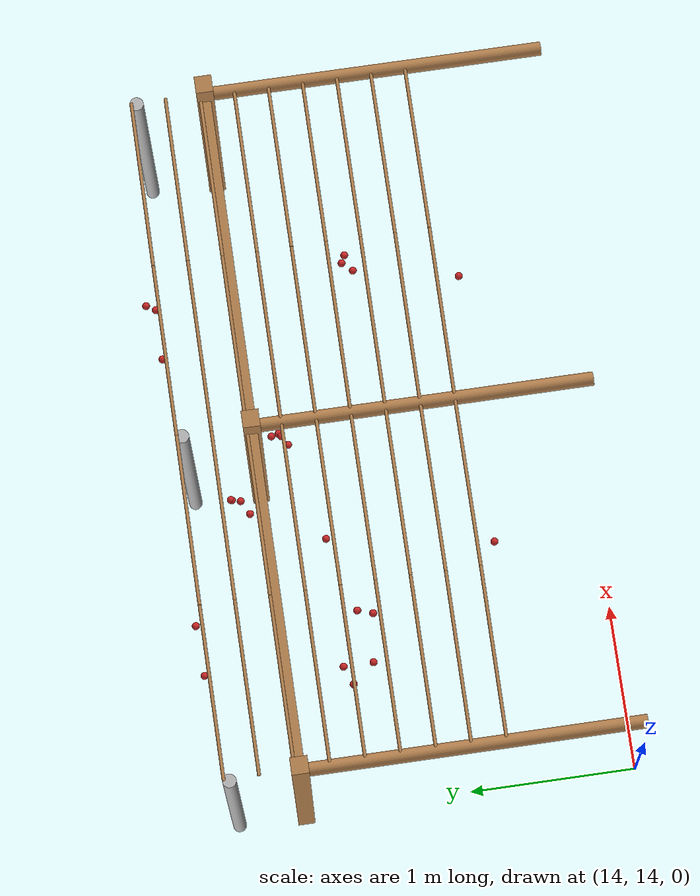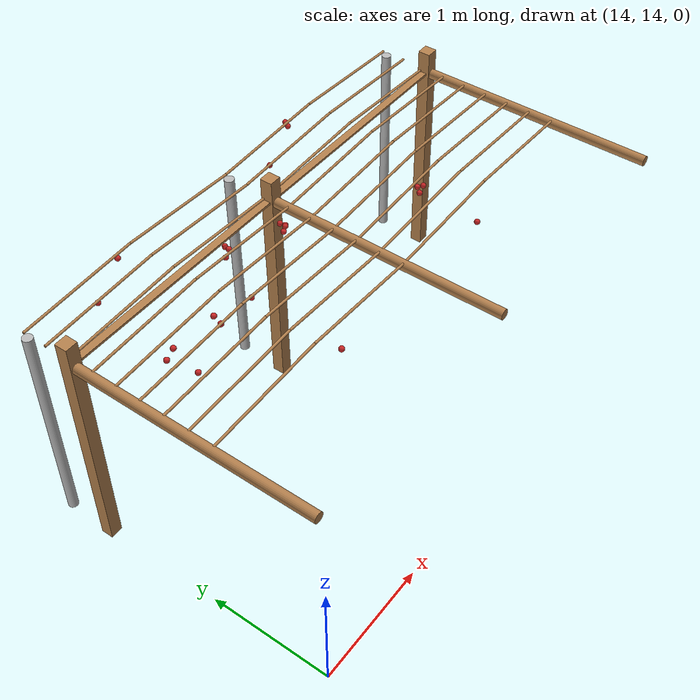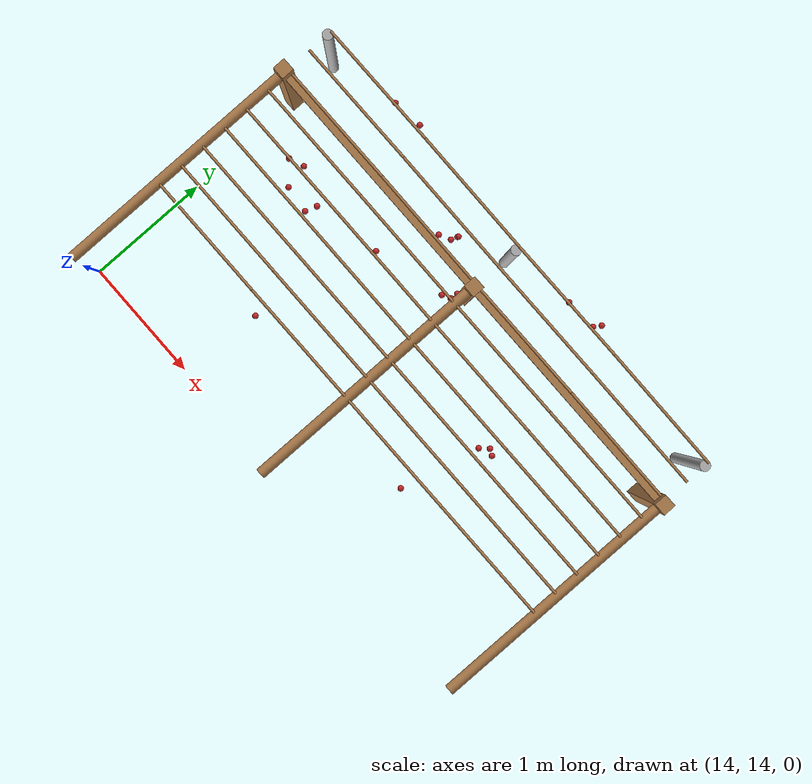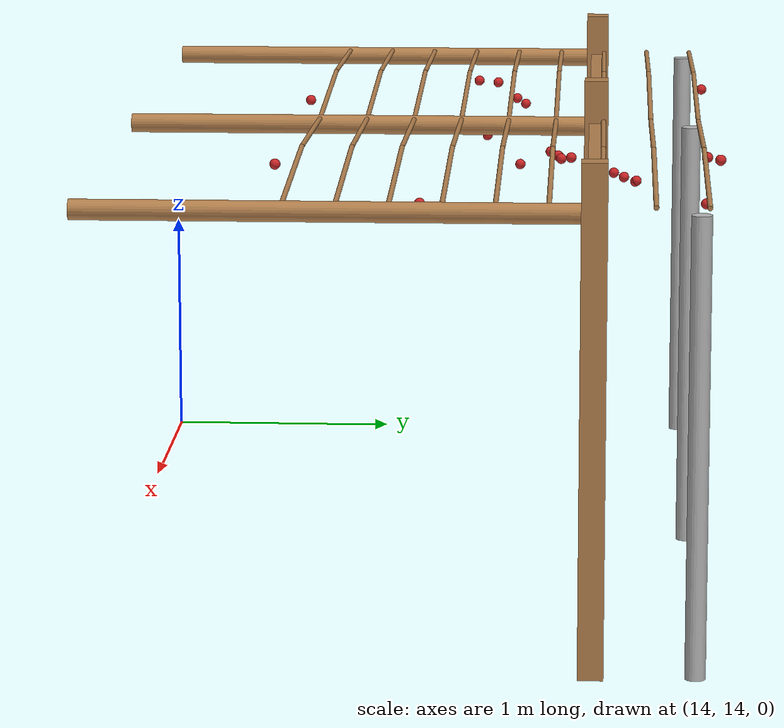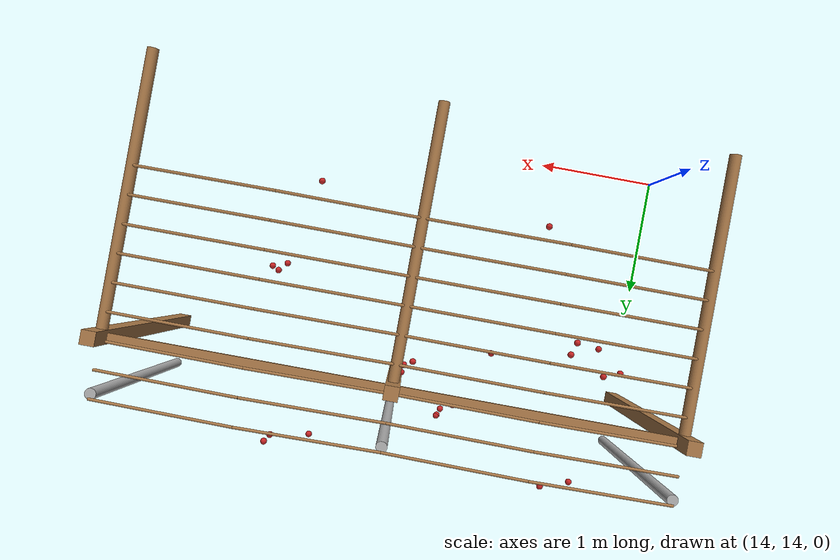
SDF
<sdf version="1.4">
 <model name="pergola">
  <include><name>post_85</name><pose>14.0 16.0 0 0 0 0</pose><uri>model://post</uri></include>
  <include><name>post_96</name><pose>16.0 16.0 0 0 0 0</pose><uri>model://post</uri></include>
  <include><name>post_107</name><pose>18.0 16.0 0 0 0 0</pose><uri>model://post</uri></include>
  <link name="beam_85">
   <pose>15.0 16.0 1.81 0 0 0</pose>
   <collision name="collision"><geometry><box><size>2.0 0.06 0.02</size></box></geometry></collision>
   <visual name="visual">
    <geometry><box><size>2.0 0.06 0.02</size></box></geometry>
    <material><script><name>Gazebo/Wood</name></script></material>
   </visual>
   <inertial>
    <mass>5</mass>
    <inertia>
     <ixx>0.0016666666666666668</ixx>
     <ixy>0.0</ixy>
     <ixz>0.0</ixz>
     <iyy>1.6681666666666664</iyy>
     <iyz>0.0</iyz>
     <izz>1.6668333333333332</izz>
    </inertia>
   </inertial>
  </link>
  <link name="beam_96">
   <pose>17.0 16.0 1.81 0 0 0</pose>
   <collision name="collision"><geometry><box><size>2.0 0.06 0.02</size></box></geometry></collision>
   <visual name="visual">
    <geometry><box><size>2.0 0.06 0.02</size></box></geometry>
    <material><script><name>Gazebo/Wood</name></script></material>
   </visual>
   <inertial>
    <mass>5</mass>
    <inertia>
     <ixx>0.0016666666666666668</ixx>
     <ixy>0.0</ixy>
     <ixz>0.0</ixz>
     <iyy>1.6681666666666664</iyy>
     <iyz>0.0</iyz>
     <izz>1.6668333333333332</izz>
    </inertia>
   </inertial>
  </link>
  <include><name>tree_78</name><pose>14.0 16.4 0 0 0 0</pose><uri>model://tree_trunk</uri></include>
  <include><name>tree_88</name><pose>16.0 16.4 0 0 0 0</pose><uri>model://tree_trunk</uri></include>
  <include><name>tree_98</name><pose>18.0 16.4 0 0 0 0</pose><uri>model://tree_trunk</uri></include>
  <link name="baseBranch_77">
   <pose>14.0 15.0 1.8 1.5707963267948966 0 0</pose>
   <collision name="collision">
    <geometry><cylinder><radius>0.04</radius><length>1.94</length></cylinder></geometry>
   </collision>
   <visual name="visual">
    <geometry><cylinder><radius>0.04</radius><length>1.94</length></cylinder></geometry>
    <material><script><name>Gazebo/WoodFloor</name></script></material>
   </visual>
   <inertial>
    <mass>10</mass>
    <inertia>
     <ixx>3.140333333333333</ixx>
     <ixy>0.0</ixy>
     <ixz>0.0</ixz>
     <iyy>3.140333333333333</iyy>
     <iyz>0.0</iyz>
     <izz>0.008</izz>
    </inertia>
   </inertial>
  </link>
  <link name="baseBranch_87">
   <pose>16.0 15.0 1.8 1.5707963267948966 0 0</pose>
   <collision name="collision">
    <geometry><cylinder><radius>0.04</radius><length>1.94</length></cylinder></geometry>
   </collision>
   <visual name="visual">
    <geometry><cylinder><radius>0.04</radius><length>1.94</length></cylinder></geometry>
    <material><script><name>Gazebo/WoodFloor</name></script></material>
   </visual>
   <inertial>
    <mass>10</mass>
    <inertia>
     <ixx>3.140333333333333</ixx>
     <ixy>0.0</ixy>
     <ixz>0.0</ixz>
     <iyy>3.140333333333333</iyy>
     <iyz>0.0</iyz>
     <izz>0.008</izz>
    </inertia>
   </inertial>
  </link>
  <link name="baseBranch_97">
   <pose>18.0 15.0 1.8 1.5707963267948966 0 0</pose>
   <collision name="collision">
    <geometry><cylinder><radius>0.04</radius><length>1.94</length></cylinder></geometry>
   </collision>
   <visual name="visual">
    <geometry><cylinder><radius>0.04</radius><length>1.94</length></cylinder></geometry>
    <material><script><name>Gazebo/WoodFloor</name></script></material>
   </visual>
   <inertial>
    <mass>10</mass>
    <inertia>
     <ixx>3.140333333333333</ixx>
     <ixy>0.0</ixy>
     <ixz>0.0</ixz>
     <iyy>3.140333333333333</iyy>
     <iyz>0.0</iyz>
     <izz>0.008</izz>
    </inertia>
   </inertial>
  </link>
  <link name="vine_1548">
   <pose>14.5 14.83 1.85 0 1.5208379310729538 0</pose>
   <collision name="collision">
    <geometry><cylinder><radius>0.01</radius><length>1.0012492197250393</length></cylinder></geometry>
   </collision>
   <visual name="visual">
    <geometry><cylinder><radius>0.01</radius><length>1.0012492197250393</length></cylinder></geometry>
    <material><script><name>Gazebo/WoodFloor</name></script></material>
   </visual>
   <inertial>
    <mass>5</mass>
    <inertia>
     <ixx>0.41783333333333345</ixx>
     <ixy>0.0</ixy>
     <ixz>0.0</ixz>
     <iyy>0.41783333333333345</iyy>
     <iyz>0.0</iyz>
     <izz>0.00025</izz>
    </inertia>
   </inertial>
  </link>
  <link name="vine_1549">
   <pose>15.5 14.83 1.85 0 -1.5208379310729538 0</pose>
   <collision name="collision">
    <geometry><cylinder><radius>0.01</radius><length>1.0012492197250393</length></cylinder></geometry>
   </collision>
   <visual name="visual">
    <geometry><cylinder><radius>0.01</radius><length>1.0012492197250393</length></cylinder></geometry>
    <material><script><name>Gazebo/WoodFloor</name></script></material>
   </visual>
   <inertial>
    <mass>5</mass>
    <inertia>
     <ixx>0.41783333333333345</ixx>
     <ixy>0.0</ixy>
     <ixz>0.0</ixz>
     <iyy>0.41783333333333345</iyy>
     <iyz>0.0</iyz>
     <izz>0.00025</izz>
    </inertia>
   </inertial>
  </link>
  <link name="vine_1550">
   <pose>14.5 15.03 1.85 0 1.5208379310729538 0</pose>
   <collision name="collision">
    <geometry><cylinder><radius>0.01</radius><length>1.0012492197250393</length></cylinder></geometry>
   </collision>
   <visual name="visual">
    <geometry><cylinder><radius>0.01</radius><length>1.0012492197250393</length></cylinder></geometry>
    <material><script><name>Gazebo/WoodFloor</name></script></material>
   </visual>
   <inertial>
    <mass>5</mass>
    <inertia>
     <ixx>0.41783333333333345</ixx>
     <ixy>0.0</ixy>
     <ixz>0.0</ixz>
     <iyy>0.41783333333333345</iyy>
     <iyz>0.0</iyz>
     <izz>0.00025</izz>
    </inertia>
   </inertial>
  </link>
  <link name="vine_1551">
   <pose>15.5 15.03 1.85 0 -1.5208379310729538 0</pose>
   <collision name="collision">
    <geometry><cylinder><radius>0.01</radius><length>1.0012492197250393</length></cylinder></geometry>
   </collision>
   <visual name="visual">
    <geometry><cylinder><radius>0.01</radius><length>1.0012492197250393</length></cylinder></geometry>
    <material><script><name>Gazebo/WoodFloor</name></script></material>
   </visual>
   <inertial>
    <mass>5</mass>
    <inertia>
     <ixx>0.41783333333333345</ixx>
     <ixy>0.0</ixy>
     <ixz>0.0</ixz>
     <iyy>0.41783333333333345</iyy>
     <iyz>0.0</iyz>
     <izz>0.00025</izz>
    </inertia>
   </inertial>
  </link>
  <link name="vine_1552">
   <pose>14.5 15.23 1.85 0 1.5208379310729538 0</pose>
   <collision name="collision">
    <geometry><cylinder><radius>0.01</radius><length>1.0012492197250393</length></cylinder></geometry>
   </collision>
   <visual name="visual">
    <geometry><cylinder><radius>0.01</radius><length>1.0012492197250393</length></cylinder></geometry>
    <material><script><name>Gazebo/WoodFloor</name></script></material>
   </visual>
   <inertial>
    <mass>5</mass>
    <inertia>
     <ixx>0.41783333333333345</ixx>
     <ixy>0.0</ixy>
     <ixz>0.0</ixz>
     <iyy>0.41783333333333345</iyy>
     <iyz>0.0</iyz>
     <izz>0.00025</izz>
    </inertia>
   </inertial>
  </link>
  <link name="vine_1553">
   <pose>15.5 15.23 1.85 0 -1.5208379310729538 0</pose>
   <collision name="collision">
    <geometry><cylinder><radius>0.01</radius><length>1.0012492197250393</length></cylinder></geometry>
   </collision>
   <visual name="visual">
    <geometry><cylinder><radius>0.01</radius><length>1.0012492197250393</length></cylinder></geometry>
    <material><script><name>Gazebo/WoodFloor</name></script></material>
   </visual>
   <inertial>
    <mass>5</mass>
    <inertia>
     <ixx>0.41783333333333345</ixx>
     <ixy>0.0</ixy>
     <ixz>0.0</ixz>
     <iyy>0.41783333333333345</iyy>
     <iyz>0.0</iyz>
     <izz>0.00025</izz>
    </inertia>
   </inertial>
  </link>
  <link name="vine_1554">
   <pose>14.5 15.43 1.85 0 1.5208379310729538 0</pose>
   <collision name="collision">
    <geometry><cylinder><radius>0.01</radius><length>1.0012492197250393</length></cylinder></geometry>
   </collision>
   <visual name="visual">
    <geometry><cylinder><radius>0.01</radius><length>1.0012492197250393</length></cylinder></geometry>
    <material><script><name>Gazebo/WoodFloor</name></script></material>
   </visual>
   <inertial>
    <mass>5</mass>
    <inertia>
     <ixx>0.41783333333333345</ixx>
     <ixy>0.0</ixy>
     <ixz>0.0</ixz>
     <iyy>0.41783333333333345</iyy>
     <iyz>0.0</iyz>
     <izz>0.00025</izz>
    </inertia>
   </inertial>
  </link>
  <link name="vine_1555">
   <pose>15.5 15.43 1.85 0 -1.5208379310729538 0</pose>
   <collision name="collision">
    <geometry><cylinder><radius>0.01</radius><length>1.0012492197250393</length></cylinder></geometry>
   </collision>
   <visual name="visual">
    <geometry><cylinder><radius>0.01</radius><length>1.0012492197250393</length></cylinder></geometry>
    <material><script><name>Gazebo/WoodFloor</name></script></material>
   </visual>
   <inertial>
    <mass>5</mass>
    <inertia>
     <ixx>0.41783333333333345</ixx>
     <ixy>0.0</ixy>
     <ixz>0.0</ixz>
     <iyy>0.41783333333333345</iyy>
     <iyz>0.0</iyz>
     <izz>0.00025</izz>
    </inertia>
   </inertial>
  </link>
  <link name="vine_1556">
   <pose>14.5 15.63 1.85 0 1.5208379310729538 0</pose>
   <collision name="collision">
    <geometry><cylinder><radius>0.01</radius><length>1.0012492197250393</length></cylinder></geometry>
   </collision>
   <visual name="visual">
    <geometry><cylinder><radius>0.01</radius><length>1.0012492197250393</length></cylinder></geometry>
    <material><script><name>Gazebo/WoodFloor</name></script></material>
   </visual>
   <inertial>
    <mass>5</mass>
    <inertia>
     <ixx>0.41783333333333345</ixx>
     <ixy>0.0</ixy>
     <ixz>0.0</ixz>
     <iyy>0.41783333333333345</iyy>
     <iyz>0.0</iyz>
     <izz>0.00025</izz>
    </inertia>
   </inertial>
  </link>
  <link name="vine_1557">
   <pose>15.5 15.63 1.85 0 -1.5208379310729538 0</pose>
   <collision name="collision">
    <geometry><cylinder><radius>0.01</radius><length>1.0012492197250393</length></cylinder></geometry>
   </collision>
   <visual name="visual">
    <geometry><cylinder><radius>0.01</radius><length>1.0012492197250393</length></cylinder></geometry>
    <material><script><name>Gazebo/WoodFloor</name></script></material>
   </visual>
   <inertial>
    <mass>5</mass>
    <inertia>
     <ixx>0.41783333333333345</ixx>
     <ixy>0.0</ixy>
     <ixz>0.0</ixz>
     <iyy>0.41783333333333345</iyy>
     <iyz>0.0</iyz>
     <izz>0.00025</izz>
    </inertia>
   </inertial>
  </link>
  <link name="vine_1558">
   <pose>14.5 15.83 1.85 0 1.5208379310729538 0</pose>
   <collision name="collision">
    <geometry><cylinder><radius>0.01</radius><length>1.0012492197250393</length></cylinder></geometry>
   </collision>
   <visual name="visual">
    <geometry><cylinder><radius>0.01</radius><length>1.0012492197250393</length></cylinder></geometry>
    <material><script><name>Gazebo/WoodFloor</name></script></material>
   </visual>
   <inertial>
    <mass>5</mass>
    <inertia>
     <ixx>0.41783333333333345</ixx>
     <ixy>0.0</ixy>
     <ixz>0.0</ixz>
     <iyy>0.41783333333333345</iyy>
     <iyz>0.0</iyz>
     <izz>0.00025</izz>
    </inertia>
   </inertial>
  </link>
  <link name="vine_1559">
   <pose>15.5 15.83 1.85 0 -1.5208379310729538 0</pose>
   <collision name="collision">
    <geometry><cylinder><radius>0.01</radius><length>1.0012492197250393</length></cylinder></geometry>
   </collision>
   <visual name="visual">
    <geometry><cylinder><radius>0.01</radius><length>1.0012492197250393</length></cylinder></geometry>
    <material><script><name>Gazebo/WoodFloor</name></script></material>
   </visual>
   <inertial>
    <mass>5</mass>
    <inertia>
     <ixx>0.41783333333333345</ixx>
     <ixy>0.0</ixy>
     <ixz>0.0</ixz>
     <iyy>0.41783333333333345</iyy>
     <iyz>0.0</iyz>
     <izz>0.00025</izz>
    </inertia>
   </inertial>
  </link>
  <link name="vine_1560">
   <pose>14.5 16.03 1.85 0 1.5208379310729538 0</pose>
   <collision name="collision">
    <geometry><cylinder><radius>0.01</radius><length>1.0012492197250393</length></cylinder></geometry>
   </collision>
   <visual name="visual">
    <geometry><cylinder><radius>0.01</radius><length>1.0012492197250393</length></cylinder></geometry>
    <material><script><name>Gazebo/WoodFloor</name></script></material>
   </visual>
   <inertial>
    <mass>5</mass>
    <inertia>
     <ixx>0.41783333333333345</ixx>
     <ixy>0.0</ixy>
     <ixz>0.0</ixz>
     <iyy>0.41783333333333345</iyy>
     <iyz>0.0</iyz>
     <izz>0.00025</izz>
    </inertia>
   </inertial>
  </link>
  <link name="vine_1561">
   <pose>15.5 16.03 1.85 0 -1.5208379310729538 0</pose>
   <collision name="collision">
    <geometry><cylinder><radius>0.01</radius><length>1.0012492197250393</length></cylinder></geometry>
   </collision>
   <visual name="visual">
    <geometry><cylinder><radius>0.01</radius><length>1.0012492197250393</length></cylinder></geometry>
    <material><script><name>Gazebo/WoodFloor</name></script></material>
   </visual>
   <inertial>
    <mass>5</mass>
    <inertia>
     <ixx>0.41783333333333345</ixx>
     <ixy>0.0</ixy>
     <ixz>0.0</ixz>
     <iyy>0.41783333333333345</iyy>
     <iyz>0.0</iyz>
     <izz>0.00025</izz>
    </inertia>
   </inertial>
  </link>
  <link name="vine_1562">
   <pose>14.5 16.23 1.85 0 1.5208379310729538 0</pose>
   <collision name="collision">
    <geometry><cylinder><radius>0.01</radius><length>1.0012492197250393</length></cylinder></geometry>
   </collision>
   <visual name="visual">
    <geometry><cylinder><radius>0.01</radius><length>1.0012492197250393</length></cylinder></geometry>
    <material><script><name>Gazebo/WoodFloor</name></script></material>
   </visual>
   <inertial>
    <mass>5</mass>
    <inertia>
     <ixx>0.41783333333333345</ixx>
     <ixy>0.0</ixy>
     <ixz>0.0</ixz>
     <iyy>0.41783333333333345</iyy>
     <iyz>0.0</iyz>
     <izz>0.00025</izz>
    </inertia>
   </inertial>
  </link>
  <link name="vine_1563">
   <pose>15.5 16.23 1.85 0 -1.5208379310729538 0</pose>
   <collision name="collision">
    <geometry><cylinder><radius>0.01</radius><length>1.0012492197250393</length></cylinder></geometry>
   </collision>
   <visual name="visual">
    <geometry><cylinder><radius>0.01</radius><length>1.0012492197250393</length></cylinder></geometry>
    <material><script><name>Gazebo/WoodFloor</name></script></material>
   </visual>
   <inertial>
    <mass>5</mass>
    <inertia>
     <ixx>0.41783333333333345</ixx>
     <ixy>0.0</ixy>
     <ixz>0.0</ixz>
     <iyy>0.41783333333333345</iyy>
     <iyz>0.0</iyz>
     <izz>0.00025</izz>
    </inertia>
   </inertial>
  </link>
  <link name="vine_1564">
   <pose>14.5 16.430000000000003 1.85 0 1.5208379310729538 0</pose>
   <collision name="collision">
    <geometry><cylinder><radius>0.01</radius><length>1.0012492197250393</length></cylinder></geometry>
   </collision>
   <visual name="visual">
    <geometry><cylinder><radius>0.01</radius><length>1.0012492197250393</length></cylinder></geometry>
    <material><script><name>Gazebo/WoodFloor</name></script></material>
   </visual>
   <inertial>
    <mass>5</mass>
    <inertia>
     <ixx>0.41783333333333345</ixx>
     <ixy>0.0</ixy>
     <ixz>0.0</ixz>
     <iyy>0.41783333333333345</iyy>
     <iyz>0.0</iyz>
     <izz>0.00025</izz>
    </inertia>
   </inertial>
  </link>
  <link name="vine_1565">
   <pose>15.5 16.430000000000003 1.85 0 -1.5208379310729538 0</pose>
   <collision name="collision">
    <geometry><cylinder><radius>0.01</radius><length>1.0012492197250393</length></cylinder></geometry>
   </collision>
   <visual name="visual">
    <geometry><cylinder><radius>0.01</radius><length>1.0012492197250393</length></cylinder></geometry>
    <material><script><name>Gazebo/WoodFloor</name></script></material>
   </visual>
   <inertial>
    <mass>5</mass>
    <inertia>
     <ixx>0.41783333333333345</ixx>
     <ixy>0.0</ixy>
     <ixz>0.0</ixz>
     <iyy>0.41783333333333345</iyy>
     <iyz>0.0</iyz>
     <izz>0.00025</izz>
    </inertia>
   </inertial>
  </link>
  <link name="vine_1748">
   <pose>16.5 14.83 1.85 0 1.5208379310729538 0</pose>
   <collision name="collision">
    <geometry><cylinder><radius>0.01</radius><length>1.0012492197250393</length></cylinder></geometry>
   </collision>
   <visual name="visual">
    <geometry><cylinder><radius>0.01</radius><length>1.0012492197250393</length></cylinder></geometry>
    <material><script><name>Gazebo/WoodFloor</name></script></material>
   </visual>
   <inertial>
    <mass>5</mass>
    <inertia>
     <ixx>0.41783333333333345</ixx>
     <ixy>0.0</ixy>
     <ixz>0.0</ixz>
     <iyy>0.41783333333333345</iyy>
     <iyz>0.0</iyz>
     <izz>0.00025</izz>
    </inertia>
   </inertial>
  </link>
  <link name="vine_1749">
   <pose>17.5 14.83 1.85 0 -1.5208379310729538 0</pose>
   <collision name="collision">
    <geometry><cylinder><radius>0.01</radius><length>1.0012492197250393</length></cylinder></geometry>
   </collision>
   <visual name="visual">
    <geometry><cylinder><radius>0.01</radius><length>1.0012492197250393</length></cylinder></geometry>
    <material><script><name>Gazebo/WoodFloor</name></script></material>
   </visual>
   <inertial>
    <mass>5</mass>
    <inertia>
     <ixx>0.41783333333333345</ixx>
     <ixy>0.0</ixy>
     <ixz>0.0</ixz>
     <iyy>0.41783333333333345</iyy>
     <iyz>0.0</iyz>
     <izz>0.00025</izz>
    </inertia>
   </inertial>
  </link>
  <link name="vine_1750">
   <pose>16.5 15.03 1.85 0 1.5208379310729538 0</pose>
   <collision name="collision">
    <geometry><cylinder><radius>0.01</radius><length>1.0012492197250393</length></cylinder></geometry>
   </collision>
   <visual name="visual">
    <geometry><cylinder><radius>0.01</radius><length>1.0012492197250393</length></cylinder></geometry>
    <material><script><name>Gazebo/WoodFloor</name></script></material>
   </visual>
   <inertial>
    <mass>5</mass>
    <inertia>
     <ixx>0.41783333333333345</ixx>
     <ixy>0.0</ixy>
     <ixz>0.0</ixz>
     <iyy>0.41783333333333345</iyy>
     <iyz>0.0</iyz>
     <izz>0.00025</izz>
    </inertia>
   </inertial>
  </link>
  <link name="vine_1751">
   <pose>17.5 15.03 1.85 0 -1.5208379310729538 0</pose>
   <collision name="collision">
    <geometry><cylinder><radius>0.01</radius><length>1.0012492197250393</length></cylinder></geometry>
   </collision>
   <visual name="visual">
    <geometry><cylinder><radius>0.01</radius><length>1.0012492197250393</length></cylinder></geometry>
    <material><script><name>Gazebo/WoodFloor</name></script></material>
   </visual>
   <inertial>
    <mass>5</mass>
    <inertia>
     <ixx>0.41783333333333345</ixx>
     <ixy>0.0</ixy>
     <ixz>0.0</ixz>
     <iyy>0.41783333333333345</iyy>
     <iyz>0.0</iyz>
     <izz>0.00025</izz>
    </inertia>
   </inertial>
  </link>
  <link name="vine_1752">
   <pose>16.5 15.23 1.85 0 1.5208379310729538 0</pose>
   <collision name="collision">
    <geometry><cylinder><radius>0.01</radius><length>1.0012492197250393</length></cylinder></geometry>
   </collision>
   <visual name="visual">
    <geometry><cylinder><radius>0.01</radius><length>1.0012492197250393</length></cylinder></geometry>
    <material><script><name>Gazebo/WoodFloor</name></script></material>
   </visual>
   <inertial>
    <mass>5</mass>
    <inertia>
     <ixx>0.41783333333333345</ixx>
     <ixy>0.0</ixy>
     <ixz>0.0</ixz>
     <iyy>0.41783333333333345</iyy>
     <iyz>0.0</iyz>
     <izz>0.00025</izz>
    </inertia>
   </inertial>
  </link>
  <link name="vine_1753">
   <pose>17.5 15.23 1.85 0 -1.5208379310729538 0</pose>
   <collision name="collision">
    <geometry><cylinder><radius>0.01</radius><length>1.0012492197250393</length></cylinder></geometry>
   </collision>
   <visual name="visual">
    <geometry><cylinder><radius>0.01</radius><length>1.0012492197250393</length></cylinder></geometry>
    <material><script><name>Gazebo/WoodFloor</name></script></material>
   </visual>
   <inertial>
    <mass>5</mass>
    <inertia>
     <ixx>0.41783333333333345</ixx>
     <ixy>0.0</ixy>
     <ixz>0.0</ixz>
     <iyy>0.41783333333333345</iyy>
     <iyz>0.0</iyz>
     <izz>0.00025</izz>
    </inertia>
   </inertial>
  </link>
  <link name="vine_1754">
   <pose>16.5 15.43 1.85 0 1.5208379310729538 0</pose>
   <collision name="collision">
    <geometry><cylinder><radius>0.01</radius><length>1.0012492197250393</length></cylinder></geometry>
   </collision>
   <visual name="visual">
    <geometry><cylinder><radius>0.01</radius><length>1.0012492197250393</length></cylinder></geometry>
    <material><script><name>Gazebo/WoodFloor</name></script></material>
   </visual>
   <inertial>
    <mass>5</mass>
    <inertia>
     <ixx>0.41783333333333345</ixx>
     <ixy>0.0</ixy>
     <ixz>0.0</ixz>
     <iyy>0.41783333333333345</iyy>
     <iyz>0.0</iyz>
     <izz>0.00025</izz>
    </inertia>
   </inertial>
  </link>
  <link name="vine_1755">
   <pose>17.5 15.43 1.85 0 -1.5208379310729538 0</pose>
   <collision name="collision">
    <geometry><cylinder><radius>0.01</radius><length>1.0012492197250393</length></cylinder></geometry>
   </collision>
   <visual name="visual">
    <geometry><cylinder><radius>0.01</radius><length>1.0012492197250393</length></cylinder></geometry>
    <material><script><name>Gazebo/WoodFloor</name></script></material>
   </visual>
   <inertial>
    <mass>5</mass>
    <inertia>
     <ixx>0.41783333333333345</ixx>
     <ixy>0.0</ixy>
     <ixz>0.0</ixz>
     <iyy>0.41783333333333345</iyy>
     <iyz>0.0</iyz>
     <izz>0.00025</izz>
    </inertia>
   </inertial>
  </link>
  <link name="vine_1756">
   <pose>16.5 15.63 1.85 0 1.5208379310729538 0</pose>
   <collision name="collision">
    <geometry><cylinder><radius>0.01</radius><length>1.0012492197250393</length></cylinder></geometry>
   </collision>
   <visual name="visual">
    <geometry><cylinder><radius>0.01</radius><length>1.0012492197250393</length></cylinder></geometry>
    <material><script><name>Gazebo/WoodFloor</name></script></material>
   </visual>
   <inertial>
    <mass>5</mass>
    <inertia>
     <ixx>0.41783333333333345</ixx>
     <ixy>0.0</ixy>
     <ixz>0.0</ixz>
     <iyy>0.41783333333333345</iyy>
     <iyz>0.0</iyz>
     <izz>0.00025</izz>
    </inertia>
   </inertial>
  </link>
  <link name="vine_1757">
   <pose>17.5 15.63 1.85 0 -1.5208379310729538 0</pose>
   <collision name="collision">
    <geometry><cylinder><radius>0.01</radius><length>1.0012492197250393</length></cylinder></geometry>
   </collision>
   <visual name="visual">
    <geometry><cylinder><radius>0.01</radius><length>1.0012492197250393</length></cylinder></geometry>
    <material><script><name>Gazebo/WoodFloor</name></script></material>
   </visual>
   <inertial>
    <mass>5</mass>
    <inertia>
     <ixx>0.41783333333333345</ixx>
     <ixy>0.0</ixy>
     <ixz>0.0</ixz>
     <iyy>0.41783333333333345</iyy>
     <iyz>0.0</iyz>
     <izz>0.00025</izz>
    </inertia>
   </inertial>
  </link>
  <link name="vine_1758">
   <pose>16.5 15.83 1.85 0 1.5208379310729538 0</pose>
   <collision name="collision">
    <geometry><cylinder><radius>0.01</radius><length>1.0012492197250393</length></cylinder></geometry>
   </collision>
   <visual name="visual">
    <geometry><cylinder><radius>0.01</radius><length>1.0012492197250393</length></cylinder></geometry>
    <material><script><name>Gazebo/WoodFloor</name></script></material>
   </visual>
   <inertial>
    <mass>5</mass>
    <inertia>
     <ixx>0.41783333333333345</ixx>
     <ixy>0.0</ixy>
     <ixz>0.0</ixz>
     <iyy>0.41783333333333345</iyy>
     <iyz>0.0</iyz>
     <izz>0.00025</izz>
    </inertia>
   </inertial>
  </link>
  <link name="vine_1759">
   <pose>17.5 15.83 1.85 0 -1.5208379310729538 0</pose>
   <collision name="collision">
    <geometry><cylinder><radius>0.01</radius><length>1.0012492197250393</length></cylinder></geometry>
   </collision>
   <visual name="visual">
    <geometry><cylinder><radius>0.01</radius><length>1.0012492197250393</length></cylinder></geometry>
    <material><script><name>Gazebo/WoodFloor</name></script></material>
   </visual>
   <inertial>
    <mass>5</mass>
    <inertia>
     <ixx>0.41783333333333345</ixx>
     <ixy>0.0</ixy>
     <ixz>0.0</ixz>
     <iyy>0.41783333333333345</iyy>
     <iyz>0.0</iyz>
     <izz>0.00025</izz>
    </inertia>
   </inertial>
  </link>
  <link name="vine_1760">
   <pose>16.5 16.03 1.85 0 1.5208379310729538 0</pose>
   <collision name="collision">
    <geometry><cylinder><radius>0.01</radius><length>1.0012492197250393</length></cylinder></geometry>
   </collision>
   <visual name="visual">
    <geometry><cylinder><radius>0.01</radius><length>1.0012492197250393</length></cylinder></geometry>
    <material><script><name>Gazebo/WoodFloor</name></script></material>
   </visual>
   <inertial>
    <mass>5</mass>
    <inertia>
     <ixx>0.41783333333333345</ixx>
     <ixy>0.0</ixy>
     <ixz>0.0</ixz>
     <iyy>0.41783333333333345</iyy>
     <iyz>0.0</iyz>
     <izz>0.00025</izz>
    </inertia>
   </inertial>
  </link>
  <link name="vine_1761">
   <pose>17.5 16.03 1.85 0 -1.5208379310729538 0</pose>
   <collision name="collision">
    <geometry><cylinder><radius>0.01</radius><length>1.0012492197250393</length></cylinder></geometry>
   </collision>
   <visual name="visual">
    <geometry><cylinder><radius>0.01</radius><length>1.0012492197250393</length></cylinder></geometry>
    <material><script><name>Gazebo/WoodFloor</name></script></material>
   </visual>
   <inertial>
    <mass>5</mass>
    <inertia>
     <ixx>0.41783333333333345</ixx>
     <ixy>0.0</ixy>
     <ixz>0.0</ixz>
     <iyy>0.41783333333333345</iyy>
     <iyz>0.0</iyz>
     <izz>0.00025</izz>
    </inertia>
   </inertial>
  </link>
  <link name="vine_1762">
   <pose>16.5 16.23 1.85 0 1.5208379310729538 0</pose>
   <collision name="collision">
    <geometry><cylinder><radius>0.01</radius><length>1.0012492197250393</length></cylinder></geometry>
   </collision>
   <visual name="visual">
    <geometry><cylinder><radius>0.01</radius><length>1.0012492197250393</length></cylinder></geometry>
    <material><script><name>Gazebo/WoodFloor</name></script></material>
   </visual>
   <inertial>
    <mass>5</mass>
    <inertia>
     <ixx>0.41783333333333345</ixx>
     <ixy>0.0</ixy>
     <ixz>0.0</ixz>
     <iyy>0.41783333333333345</iyy>
     <iyz>0.0</iyz>
     <izz>0.00025</izz>
    </inertia>
   </inertial>
  </link>
  <link name="vine_1763">
   <pose>17.5 16.23 1.85 0 -1.5208379310729538 0</pose>
   <collision name="collision">
    <geometry><cylinder><radius>0.01</radius><length>1.0012492197250393</length></cylinder></geometry>
   </collision>
   <visual name="visual">
    <geometry><cylinder><radius>0.01</radius><length>1.0012492197250393</length></cylinder></geometry>
    <material><script><name>Gazebo/WoodFloor</name></script></material>
   </visual>
   <inertial>
    <mass>5</mass>
    <inertia>
     <ixx>0.41783333333333345</ixx>
     <ixy>0.0</ixy>
     <ixz>0.0</ixz>
     <iyy>0.41783333333333345</iyy>
     <iyz>0.0</iyz>
     <izz>0.00025</izz>
    </inertia>
   </inertial>
  </link>
  <link name="vine_1764">
   <pose>16.5 16.430000000000003 1.85 0 1.5208379310729538 0</pose>
   <collision name="collision">
    <geometry><cylinder><radius>0.01</radius><length>1.0012492197250393</length></cylinder></geometry>
   </collision>
   <visual name="visual">
    <geometry><cylinder><radius>0.01</radius><length>1.0012492197250393</length></cylinder></geometry>
    <material><script><name>Gazebo/WoodFloor</name></script></material>
   </visual>
   <inertial>
    <mass>5</mass>
    <inertia>
     <ixx>0.41783333333333345</ixx>
     <ixy>0.0</ixy>
     <ixz>0.0</ixz>
     <iyy>0.41783333333333345</iyy>
     <iyz>0.0</iyz>
     <izz>0.00025</izz>
    </inertia>
   </inertial>
  </link>
  <link name="vine_1765">
   <pose>17.5 16.430000000000003 1.85 0 -1.5208379310729538 0</pose>
   <collision name="collision">
    <geometry><cylinder><radius>0.01</radius><length>1.0012492197250393</length></cylinder></geometry>
   </collision>
   <visual name="visual">
    <geometry><cylinder><radius>0.01</radius><length>1.0012492197250393</length></cylinder></geometry>
    <material><script><name>Gazebo/WoodFloor</name></script></material>
   </visual>
   <inertial>
    <mass>5</mass>
    <inertia>
     <ixx>0.41783333333333345</ixx>
     <ixy>0.0</ixy>
     <ixz>0.0</ixz>
     <iyy>0.41783333333333345</iyy>
     <iyz>0.0</iyz>
     <izz>0.00025</izz>
    </inertia>
   </inertial>
  </link>
  <link name="fruit_13">
   <pose>14.599751638799503 15.499079229107645 1.5217021769351142 0 0 0</pose>
   <collision name="fruit_collision_13"><geometry><sphere><radius>0.022</radius></sphere></geometry></collision>
   <visual name="visual">
    <geometry><sphere><radius>0.022</radius></sphere></geometry>
    <material><script><name>Gazebo/Red</name></script></material>
   </visual>
   <inertial>
    <mass>0.05</mass>
    <inertia>
     <ixx>9.679999999999999e-06</ixx>
     <ixy>0.0</ixy>
     <ixz>0.0</ixz>
     <iyy>9.679999999999999e-06</iyy>
     <iyz>0.0</iyz>
     <izz>9.679999999999999e-06</izz>
    </inertia>
   </inertial>
   <sensor name="fruit_contact_13" type="contact">
    <contact><collision>fruit_collision_13</collision></contact>
   </sensor>
  </link>
  <link name="fruit_25">
   <pose>15.892518075494431 15.807422593508146 1.6711292483793434 0 0 0</pose>
   <collision name="fruit_collision_25"><geometry><sphere><radius>0.022</radius></sphere></geometry></collision>
   <visual name="visual">
    <geometry><sphere><radius>0.022</radius></sphere></geometry>
    <material><script><name>Gazebo/Red</name></script></material>
   </visual>
   <inertial>
    <mass>0.05</mass>
    <inertia>
     <ixx>9.679999999999999e-06</ixx>
     <ixy>0.0</ixy>
     <ixz>0.0</ixz>
     <iyy>9.679999999999999e-06</iyy>
     <iyz>0.0</iyz>
     <izz>9.679999999999999e-06</izz>
    </inertia>
   </inertial>
   <sensor name="fruit_contact_25" type="contact">
    <contact><collision>fruit_collision_25</collision></contact>
   </sensor>
  </link>
  <link name="fruit_30">
   <pose>15.349017617628139 15.666300455769356 1.5207828186529377 0 0 0</pose>
   <collision name="fruit_collision_30"><geometry><sphere><radius>0.022</radius></sphere></geometry></collision>
   <visual name="visual">
    <geometry><sphere><radius>0.022</radius></sphere></geometry>
    <material><script><name>Gazebo/Red</name></script></material>
   </visual>
   <inertial>
    <mass>0.05</mass>
    <inertia>
     <ixx>9.679999999999999e-06</ixx>
     <ixy>0.0</ixy>
     <ixz>0.0</ixz>
     <iyy>9.679999999999999e-06</iyy>
     <iyz>0.0</iyz>
     <izz>9.679999999999999e-06</izz>
    </inertia>
   </inertial>
   <sensor name="fruit_contact_30" type="contact">
    <contact><collision>fruit_collision_30</collision></contact>
   </sensor>
  </link>
  <link name="fruit_129">
   <pose>14.463595144476603 15.63184186789871 1.6741413128577944 0 0 0</pose>
   <collision name="fruit_collision_129"><geometry><sphere><radius>0.022</radius></sphere></geometry></collision>
   <visual name="visual">
    <geometry><sphere><radius>0.022</radius></sphere></geometry>
    <material><script><name>Gazebo/Red</name></script></material>
   </visual>
   <inertial>
    <mass>0.05</mass>
    <inertia>
     <ixx>9.679999999999999e-06</ixx>
     <ixy>0.0</ixy>
     <ixz>0.0</ixz>
     <iyy>9.679999999999999e-06</iyy>
     <iyz>0.0</iyz>
     <izz>9.679999999999999e-06</izz>
    </inertia>
   </inertial>
   <sensor name="fruit_contact_129" type="contact">
    <contact><collision>fruit_collision_129</collision></contact>
   </sensor>
  </link>
  <link name="fruit_134">
   <pose>15.555205070659746 16.077926271148222 1.5222772884875078 0 0 0</pose>
   <collision name="fruit_collision_134"><geometry><sphere><radius>0.022</radius></sphere></geometry></collision>
   <visual name="visual">
    <geometry><sphere><radius>0.022</radius></sphere></geometry>
    <material><script><name>Gazebo/Red</name></script></material>
   </visual>
   <inertial>
    <mass>0.05</mass>
    <inertia>
     <ixx>9.679999999999999e-06</ixx>
     <ixy>0.0</ixy>
     <ixz>0.0</ixz>
     <iyy>9.679999999999999e-06</iyy>
     <iyz>0.0</iyz>
     <izz>9.679999999999999e-06</izz>
    </inertia>
   </inertial>
   <sensor name="fruit_contact_134" type="contact">
    <contact><collision>fruit_collision_134</collision></contact>
   </sensor>
  </link>
  <link name="fruit_135">
   <pose>14.652431235591814 16.460562989079065 1.5587948477749094 0 0 0</pose>
   <collision name="fruit_collision_135"><geometry><sphere><radius>0.022</radius></sphere></geometry></collision>
   <visual name="visual">
    <geometry><sphere><radius>0.022</radius></sphere></geometry>
    <material><script><name>Gazebo/Red</name></script></material>
   </visual>
   <inertial>
    <mass>0.05</mass>
    <inertia>
     <ixx>9.679999999999999e-06</ixx>
     <ixy>0.0</ixy>
     <ixz>0.0</ixz>
     <iyy>9.679999999999999e-06</iyy>
     <iyz>0.0</iyz>
     <izz>9.679999999999999e-06</izz>
    </inertia>
   </inertial>
   <sensor name="fruit_contact_135" type="contact">
    <contact><collision>fruit_collision_135</collision></contact>
   </sensor>
  </link>
  <link name="fruit_162">
   <pose>16.75696470278162 16.45031778039165 1.8011777476184252 0 0 0</pose>
   <collision name="fruit_collision_162"><geometry><sphere><radius>0.022</radius></sphere></geometry></collision>
   <visual name="visual">
    <geometry><sphere><radius>0.022</radius></sphere></geometry>
    <material><script><name>Gazebo/Red</name></script></material>
   </visual>
   <inertial>
    <mass>0.05</mass>
    <inertia>
     <ixx>9.679999999999999e-06</ixx>
     <ixy>0.0</ixy>
     <ixz>0.0</ixz>
     <iyy>9.679999999999999e-06</iyy>
     <iyz>0.0</iyz>
     <izz>9.679999999999999e-06</izz>
    </inertia>
   </inertial>
   <sensor name="fruit_contact_162" type="contact">
    <contact><collision>fruit_collision_162</collision></contact>
   </sensor>
  </link>
  <link name="fruit_275">
   <pose>16.875904267209705 15.29366251541489 1.6250859125729238 0 0 0</pose>
   <collision name="fruit_collision_275"><geometry><sphere><radius>0.022</radius></sphere></geometry></collision>
   <visual name="visual">
    <geometry><sphere><radius>0.022</radius></sphere></geometry>
    <material><script><name>Gazebo/Red</name></script></material>
   </visual>
   <inertial>
    <mass>0.05</mass>
    <inertia>
     <ixx>9.679999999999999e-06</ixx>
     <ixy>0.0</ixy>
     <ixz>0.0</ixz>
     <iyy>9.679999999999999e-06</iyy>
     <iyz>0.0</iyz>
     <izz>9.679999999999999e-06</izz>
    </inertia>
   </inertial>
   <sensor name="fruit_contact_275" type="contact">
    <contact><collision>fruit_collision_275</collision></contact>
   </sensor>
  </link>
  <link name="fruit_290">
   <pose>14.899940928329519 16.468312409307824 1.7889826727639158 0 0 0</pose>
   <collision name="fruit_collision_290"><geometry><sphere><radius>0.022</radius></sphere></geometry></collision>
   <visual name="visual">
    <geometry><sphere><radius>0.022</radius></sphere></geometry>
    <material><script><name>Gazebo/Red</name></script></material>
   </visual>
   <inertial>
    <mass>0.05</mass>
    <inertia>
     <ixx>9.679999999999999e-06</ixx>
     <ixy>0.0</ixy>
     <ixz>0.0</ixz>
     <iyy>9.679999999999999e-06</iyy>
     <iyz>0.0</iyz>
     <izz>9.679999999999999e-06</izz>
    </inertia>
   </inertial>
   <sensor name="fruit_contact_290" type="contact">
    <contact><collision>fruit_collision_290</collision></contact>
   </sensor>
  </link>
  <link name="fruit_314">
   <pose>16.522898430052106 16.45509445359821 1.567583798695419 0 0 0</pose>
   <collision name="fruit_collision_314"><geometry><sphere><radius>0.022</radius></sphere></geometry></collision>
   <visual name="visual">
    <geometry><sphere><radius>0.022</radius></sphere></geometry>
    <material><script><name>Gazebo/Red</name></script></material>
   </visual>
   <inertial>
    <mass>0.05</mass>
    <inertia>
     <ixx>9.679999999999999e-06</ixx>
     <ixy>0.0</ixy>
     <ixz>0.0</ixz>
     <iyy>9.679999999999999e-06</iyy>
     <iyz>0.0</iyz>
     <izz>9.679999999999999e-06</izz>
    </inertia>
   </inertial>
   <sensor name="fruit_contact_314" type="contact">
    <contact><collision>fruit_collision_314</collision></contact>
   </sensor>
  </link>
  <link name="fruit_351">
   <pose>14.82656017627346 15.46821440239112 1.810853120707061 0 0 0</pose>
   <collision name="fruit_collision_351"><geometry><sphere><radius>0.022</radius></sphere></geometry></collision>
   <visual name="visual">
    <geometry><sphere><radius>0.022</radius></sphere></geometry>
    <material><script><name>Gazebo/Red</name></script></material>
   </visual>
   <inertial>
    <mass>0.05</mass>
    <inertia>
     <ixx>9.679999999999999e-06</ixx>
     <ixy>0.0</ixy>
     <ixz>0.0</ixz>
     <iyy>9.679999999999999e-06</iyy>
     <iyz>0.0</iyz>
     <izz>9.679999999999999e-06</izz>
    </inertia>
   </inertial>
   <sensor name="fruit_contact_351" type="contact">
    <contact><collision>fruit_collision_351</collision></contact>
   </sensor>
  </link>
  <link name="fruit_383">
   <pose>15.656540753891345 16.17542510599129 1.5055751791608616 0 0 0</pose>
   <collision name="fruit_collision_383"><geometry><sphere><radius>0.022</radius></sphere></geometry></collision>
   <visual name="visual">
    <geometry><sphere><radius>0.022</radius></sphere></geometry>
    <material><script><name>Gazebo/Red</name></script></material>
   </visual>
   <inertial>
    <mass>0.05</mass>
    <inertia>
     <ixx>9.679999999999999e-06</ixx>
     <ixy>0.0</ixy>
     <ixz>0.0</ixz>
     <iyy>9.679999999999999e-06</iyy>
     <iyz>0.0</iyz>
     <izz>9.679999999999999e-06</izz>
    </inertia>
   </inertial>
   <sensor name="fruit_contact_383" type="contact">
    <contact><collision>fruit_collision_383</collision></contact>
   </sensor>
  </link>
  <link name="fruit_493">
   <pose>15.653708223477011 16.170813524661153 1.5022310811965693 0 0 0</pose>
   <collision name="fruit_collision_493"><geometry><sphere><radius>0.022</radius></sphere></geometry></collision>
   <visual name="visual">
    <geometry><sphere><radius>0.022</radius></sphere></geometry>
    <material><script><name>Gazebo/Red</name></script></material>
   </visual>
   <inertial>
    <mass>0.05</mass>
    <inertia>
     <ixx>9.679999999999999e-06</ixx>
     <ixy>0.0</ixy>
     <ixz>0.0</ixz>
     <iyy>9.679999999999999e-06</iyy>
     <iyz>0.0</iyz>
     <izz>9.679999999999999e-06</izz>
    </inertia>
   </inertial>
   <sensor name="fruit_contact_493" type="contact">
    <contact><collision>fruit_collision_493</collision></contact>
   </sensor>
  </link>
  <link name="fruit_496">
   <pose>16.79023854807688 16.502741102058366 1.7965854019917458 0 0 0</pose>
   <collision name="fruit_collision_496"><geometry><sphere><radius>0.022</radius></sphere></geometry></collision>
   <visual name="visual">
    <geometry><sphere><radius>0.022</radius></sphere></geometry>
    <material><script><name>Gazebo/Red</name></script></material>
   </visual>
   <inertial>
    <mass>0.05</mass>
    <inertia>
     <ixx>9.679999999999999e-06</ixx>
     <ixy>0.0</ixy>
     <ixz>0.0</ixz>
     <iyy>9.679999999999999e-06</iyy>
     <iyz>0.0</iyz>
     <izz>9.679999999999999e-06</izz>
    </inertia>
   </inertial>
   <sensor name="fruit_contact_496" type="contact">
    <contact><collision>fruit_collision_496</collision></contact>
   </sensor>
  </link>
  <link name="fruit_530">
   <pose>16.931423780257234 15.351836661602674 1.6189157694920029 0 0 0</pose>
   <collision name="fruit_collision_530"><geometry><sphere><radius>0.022</radius></sphere></geometry></collision>
   <visual name="visual">
    <geometry><sphere><radius>0.022</radius></sphere></geometry>
    <material><script><name>Gazebo/Red</name></script></material>
   </visual>
   <inertial>
    <mass>0.05</mass>
    <inertia>
     <ixx>9.679999999999999e-06</ixx>
     <ixy>0.0</ixy>
     <ixz>0.0</ixz>
     <iyy>9.679999999999999e-06</iyy>
     <iyz>0.0</iyz>
     <izz>9.679999999999999e-06</izz>
    </inertia>
   </inertial>
   <sensor name="fruit_contact_530" type="contact">
    <contact><collision>fruit_collision_530</collision></contact>
   </sensor>
  </link>
  <link name="fruit_567">
   <pose>15.958446877556879 15.894953959781029 1.6576023168583922 0 0 0</pose>
   <collision name="fruit_collision_567"><geometry><sphere><radius>0.022</radius></sphere></geometry></collision>
   <visual name="visual">
    <geometry><sphere><radius>0.022</radius></sphere></geometry>
    <material><script><name>Gazebo/Red</name></script></material>
   </visual>
   <inertial>
    <mass>0.05</mass>
    <inertia>
     <ixx>9.679999999999999e-06</ixx>
     <ixy>0.0</ixy>
     <ixz>0.0</ixz>
     <iyy>9.679999999999999e-06</iyy>
     <iyz>0.0</iyz>
     <izz>9.679999999999999e-06</izz>
    </inertia>
   </inertial>
   <sensor name="fruit_contact_567" type="contact">
    <contact><collision>fruit_collision_567</collision></contact>
   </sensor>
  </link>
  <link name="fruit_655">
   <pose>15.638127228089683 16.121368438810773 1.5184205528580346 0 0 0</pose>
   <collision name="fruit_collision_655"><geometry><sphere><radius>0.022</radius></sphere></geometry></collision>
   <visual name="visual">
    <geometry><sphere><radius>0.022</radius></sphere></geometry>
    <material><script><name>Gazebo/Red</name></script></material>
   </visual>
   <inertial>
    <mass>0.05</mass>
    <inertia>
     <ixx>9.679999999999999e-06</ixx>
     <ixy>0.0</ixy>
     <ixz>0.0</ixz>
     <iyy>9.679999999999999e-06</iyy>
     <iyz>0.0</iyz>
     <izz>9.679999999999999e-06</izz>
    </inertia>
   </inertial>
   <sensor name="fruit_contact_655" type="contact">
    <contact><collision>fruit_collision_655</collision></contact>
   </sensor>
  </link>
  <link name="fruit_679">
   <pose>15.951328727820982 15.839943251646437 1.6632242225043086 0 0 0</pose>
   <collision name="fruit_collision_679"><geometry><sphere><radius>0.022</radius></sphere></geometry></collision>
   <visual name="visual">
    <geometry><sphere><radius>0.022</radius></sphere></geometry>
    <material><script><name>Gazebo/Red</name></script></material>
   </visual>
   <inertial>
    <mass>0.05</mass>
    <inertia>
     <ixx>9.679999999999999e-06</ixx>
     <ixy>0.0</ixy>
     <ixz>0.0</ixz>
     <iyy>9.679999999999999e-06</iyy>
     <iyz>0.0</iyz>
     <izz>9.679999999999999e-06</izz>
    </inertia>
   </inertial>
   <sensor name="fruit_contact_679" type="contact">
    <contact><collision>fruit_collision_679</collision></contact>
   </sensor>
  </link>
  <link name="fruit_722">
   <pose>16.978100898300003 15.32939290002711 1.611093139848032 0 0 0</pose>
   <collision name="fruit_collision_722"><geometry><sphere><radius>0.022</radius></sphere></geometry></collision>
   <visual name="visual">
    <geometry><sphere><radius>0.022</radius></sphere></geometry>
    <material><script><name>Gazebo/Red</name></script></material>
   </visual>
   <inertial>
    <mass>0.05</mass>
    <inertia>
     <ixx>9.679999999999999e-06</ixx>
     <ixy>0.0</ixy>
     <ixz>0.0</ixz>
     <iyy>9.679999999999999e-06</iyy>
     <iyz>0.0</iyz>
     <izz>9.679999999999999e-06</izz>
    </inertia>
   </inertial>
   <sensor name="fruit_contact_722" type="contact">
    <contact><collision>fruit_collision_722</collision></contact>
   </sensor>
  </link>
  <link name="fruit_778">
   <pose>15.969527828255938 15.85302575677948 1.65473526260406 0 0 0</pose>
   <collision name="fruit_collision_778"><geometry><sphere><radius>0.022</radius></sphere></geometry></collision>
   <visual name="visual">
    <geometry><sphere><radius>0.022</radius></sphere></geometry>
    <material><script><name>Gazebo/Red</name></script></material>
   </visual>
   <inertial>
    <mass>0.05</mass>
    <inertia>
     <ixx>9.679999999999999e-06</ixx>
     <ixy>0.0</ixy>
     <ixz>0.0</ixz>
     <iyy>9.679999999999999e-06</iyy>
     <iyz>0.0</iyz>
     <izz>9.679999999999999e-06</izz>
    </inertia>
   </inertial>
   <sensor name="fruit_contact_778" type="contact">
    <contact><collision>fruit_collision_778</collision></contact>
   </sensor>
  </link>
  <link name="fruit_873">
   <pose>14.855192451573496 15.554615977068725 1.8079784600246294 0 0 0</pose>
   <collision name="fruit_collision_873"><geometry><sphere><radius>0.022</radius></sphere></geometry></collision>
   <visual name="visual">
    <geometry><sphere><radius>0.022</radius></sphere></geometry>
    <material><script><name>Gazebo/Red</name></script></material>
   </visual>
   <inertial>
    <mass>0.05</mass>
    <inertia>
     <ixx>9.679999999999999e-06</ixx>
     <ixy>0.0</ixy>
     <ixz>0.0</ixz>
     <iyy>9.679999999999999e-06</iyy>
     <iyz>0.0</iyz>
     <izz>9.679999999999999e-06</izz>
    </inertia>
   </inertial>
   <sensor name="fruit_contact_873" type="contact">
    <contact><collision>fruit_collision_873</collision></contact>
   </sensor>
  </link>
  <link name="fruit_890">
   <pose>14.572320212177798 15.67382039421508 1.6662964551677957 0 0 0</pose>
   <collision name="fruit_collision_890"><geometry><sphere><radius>0.022</radius></sphere></geometry></collision>
   <visual name="visual">
    <geometry><sphere><radius>0.022</radius></sphere></geometry>
    <material><script><name>Gazebo/Red</name></script></material>
   </visual>
   <inertial>
    <mass>0.05</mass>
    <inertia>
     <ixx>9.679999999999999e-06</ixx>
     <ixy>0.0</ixy>
     <ixz>0.0</ixz>
     <iyy>9.679999999999999e-06</iyy>
     <iyz>0.0</iyz>
     <izz>9.679999999999999e-06</izz>
    </inertia>
   </inertial>
   <sensor name="fruit_contact_890" type="contact">
    <contact><collision>fruit_collision_890</collision></contact>
   </sensor>
  </link>
  <link name="fruit_905">
   <pose>15.146133409165046 14.726969696755374 1.7665500597680515 0 0 0</pose>
   <collision name="fruit_collision_905"><geometry><sphere><radius>0.022</radius></sphere></geometry></collision>
   <visual name="visual">
    <geometry><sphere><radius>0.022</radius></sphere></geometry>
    <material><script><name>Gazebo/Red</name></script></material>
   </visual>
   <inertial>
    <mass>0.05</mass>
    <inertia>
     <ixx>9.679999999999999e-06</ixx>
     <ixy>0.0</ixy>
     <ixz>0.0</ixz>
     <iyy>9.679999999999999e-06</iyy>
     <iyz>0.0</iyz>
     <izz>9.679999999999999e-06</izz>
    </inertia>
   </inertial>
   <sensor name="fruit_contact_905" type="contact">
    <contact><collision>fruit_collision_905</collision></contact>
   </sensor>
  </link>
  <link name="fruit_925">
   <pose>16.722340058253494 14.698276328836046 1.7532038760341528 0 0 0</pose>
   <collision name="fruit_collision_925"><geometry><sphere><radius>0.022</radius></sphere></geometry></collision>
   <visual name="visual">
    <geometry><sphere><radius>0.022</radius></sphere></geometry>
    <material><script><name>Gazebo/Red</name></script></material>
   </visual>
   <inertial>
    <mass>0.05</mass>
    <inertia>
     <ixx>9.679999999999999e-06</ixx>
     <ixy>0.0</ixy>
     <ixz>0.0</ixz>
     <iyy>9.679999999999999e-06</iyy>
     <iyz>0.0</iyz>
     <izz>9.679999999999999e-06</izz>
    </inertia>
   </inertial>
   <sensor name="fruit_contact_925" type="contact">
    <contact><collision>fruit_collision_925</collision></contact>
   </sensor>
  </link>
 </model>
</sdf>
